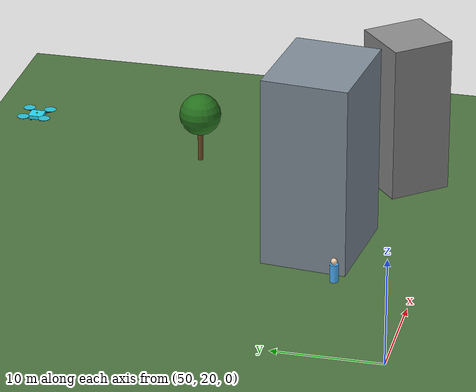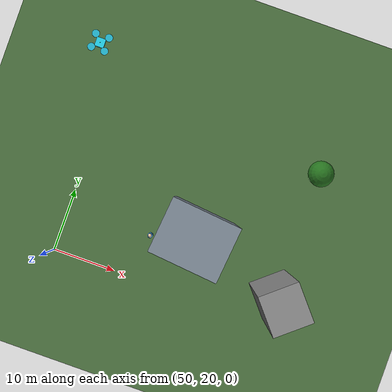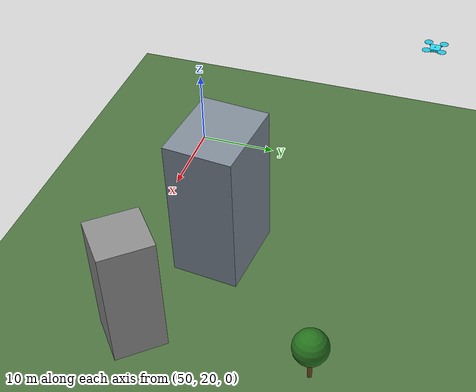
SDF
<sdf version="1.6">
 <world name="vla_6g_demo">
  <model name="ground_plane">
   <static>true</static>
   <link name="link">
    <collision name="collision">
     <geometry><plane><normal>0 0 1</normal><size>200 200</size></plane></geometry>
    </collision>
    <visual name="visual">
     <geometry><plane><normal>0 0 1</normal><size>200 200</size></plane></geometry>
     <material>
      <ambient>0.25 0.4 0.2 1</ambient>
      <diffuse>0.3 0.45 0.25 1</diffuse>
      <specular>0.05 0.05 0.05 1</specular>
     </material>
    </visual>
   </link>
   <pose>50 50 0 0 0 0</pose>
  </model>
  <model name="building_2">
   <static>true</static>
   <link name="link">
    <visual name="visual">
     <geometry><box><size>10 8 18</size></box></geometry>
     <material>
      <ambient>0.45 0.5 0.55 1</ambient>
      <diffuse>0.5 0.55 0.6 1</diffuse>
      <specular>0.3 0.3 0.3 1</specular>
     </material>
    </visual>
   </link>
   <pose>70 30 9 0 0 -0.1</pose>
  </model>
  <model name="building_5">
   <static>true</static>
   <link name="link">
    <visual name="visual">
     <geometry><box><size>6 6 15</size></box></geometry>
     <material><ambient>0.5 0.5 0.5 1</ambient><diffuse>0.55 0.55 0.55 1</diffuse></material>
    </visual>
   </link>
   <pose>85 25 7.5 0 0 0.7</pose>
  </model>
  <model name="user_0">
   <static>true</static>
   <link name="link">
    <visual name="body">
     <geometry><cylinder><radius>0.4</radius><length>1.7</length></cylinder></geometry>
     <material><ambient>0.2 0.6 0.9 1</ambient><diffuse>0.3 0.7 1.0 1</diffuse></material>
    </visual>
    <visual name="head">
     <pose>0 0 1.1 0 0 0</pose>
     <geometry><sphere><radius>0.3</radius></sphere></geometry>
     <material><ambient>0.9 0.75 0.6 1</ambient><diffuse>0.95 0.8 0.65 1</diffuse></material>
    </visual>
    <visual name="phone">
     <pose>0.35 0 0.3 0 0.3 0</pose>
     <geometry><box><size>0.08 0.04 0.15</size></box></geometry>
     <material>
      <ambient>0.1 0.1 0.1 1</ambient>
      <diffuse>0.15 0.15 0.15 1</diffuse>
      <emissive>0.0 0.3 0.5 1</emissive>
     </material>
    </visual>
   </link>
   <pose>63.6 27.3 0.85 0 0 0</pose>
  </model>
  <model name="tree_2">
   <static>true</static>
   <link name="link">
    <visual name="trunk">
     <geometry><cylinder><radius>0.25</radius><length>3.5</length></cylinder></geometry>
     <material><ambient>0.4 0.25 0.1 1</ambient><diffuse>0.45 0.3 0.15 1</diffuse></material>
    </visual>
    <visual name="canopy">
     <pose>0 0 3.0 0 0 0</pose>
     <geometry><sphere><radius>2.0</radius></sphere></geometry>
     <material><ambient>0.1 0.35 0.1 1</ambient><diffuse>0.15 0.45 0.12 1</diffuse></material>
    </visual>
   </link>
   <pose>85 45 1.75 0 0 0</pose>
  </model>
  <model name="x3_uav">
   <pose>50 50 20 0 0 0</pose>
   <link name="base_link">
    <inertial>
     <mass>1.5</mass>
     <inertia><ixx>0.19125</ixx><ixy>0</ixy><ixz>0</ixz><iyy>0.19125</iyy><iyz>0</iyz><izz>0.36</izz></inertia>
    </inertial>
    <visual name="body">
     <geometry><box><size>1.2 1.2 0.3</size></box></geometry>
     <material>
      <ambient>0.1 0.8 0.9 1</ambient>
      <diffuse>0.15 0.85 0.95 1</diffuse>
      <specular>0.5 0.5 0.5 1</specular>
     </material>
    </visual>
    <collision name="body_col"><geometry><box><size>1.2 1.2 0.3</size></box></geometry></collision>
    <visual name="arm_fr">
     <pose>0.5 -0.5 0 0 0 -0.785</pose>
     <geometry><box><size>1.2 0.12 0.1</size></box></geometry>
     <material><ambient>0.3 0.3 0.3 1</ambient><diffuse>0.35 0.35 0.35 1</diffuse></material>
    </visual>
    <visual name="arm_fl">
     <pose>0.5 0.5 0 0 0 0.785</pose>
     <geometry><box><size>1.2 0.12 0.1</size></box></geometry>
     <material><ambient>0.3 0.3 0.3 1</ambient><diffuse>0.35 0.35 0.35 1</diffuse></material>
    </visual>
    <visual name="arm_rr">
     <pose>-0.5 -0.5 0 0 0 0.785</pose>
     <geometry><box><size>1.2 0.12 0.1</size></box></geometry>
     <material><ambient>0.3 0.3 0.3 1</ambient><diffuse>0.35 0.35 0.35 1</diffuse></material>
    </visual>
    <visual name="arm_rl">
     <pose>-0.5 0.5 0 0 0 -0.785</pose>
     <geometry><box><size>1.2 0.12 0.1</size></box></geometry>
     <material><ambient>0.3 0.3 0.3 1</ambient><diffuse>0.35 0.35 0.35 1</diffuse></material>
    </visual>
    <visual name="motor_fr">
     <pose>0.9 -0.9 0.08 0 0 0</pose>
     <geometry><cylinder><radius>0.12</radius><length>0.15</length></cylinder></geometry>
     <material><ambient>0.2 0.2 0.2 1</ambient><diffuse>0.25 0.25 0.25 1</diffuse></material>
    </visual>
    <visual name="motor_fl">
     <pose>0.9 0.9 0.08 0 0 0</pose>
     <geometry><cylinder><radius>0.12</radius><length>0.15</length></cylinder></geometry>
     <material><ambient>0.2 0.2 0.2 1</ambient><diffuse>0.25 0.25 0.25 1</diffuse></material>
    </visual>
    <visual name="motor_rr">
     <pose>-0.9 -0.9 0.08 0 0 0</pose>
     <geometry><cylinder><radius>0.12</radius><length>0.15</length></cylinder></geometry>
     <material><ambient>0.2 0.2 0.2 1</ambient><diffuse>0.25 0.25 0.25 1</diffuse></material>
    </visual>
    <visual name="motor_rl">
     <pose>-0.9 0.9 0.08 0 0 0</pose>
     <geometry><cylinder><radius>0.12</radius><length>0.15</length></cylinder></geometry>
     <material><ambient>0.2 0.2 0.2 1</ambient><diffuse>0.25 0.25 0.25 1</diffuse></material>
    </visual>
    <visual name="leg_l">
     <pose>0 0.4 -0.3 0 0 0</pose>
     <geometry><box><size>1.0 0.06 0.06</size></box></geometry>
     <material><ambient>0.3 0.3 0.3 1</ambient><diffuse>0.35 0.35 0.35 1</diffuse></material>
    </visual>
    <visual name="leg_r">
     <pose>0 -0.4 -0.3 0 0 0</pose>
     <geometry><box><size>1.0 0.06 0.06</size></box></geometry>
     <material><ambient>0.3 0.3 0.3 1</ambient><diffuse>0.35 0.35 0.35 1</diffuse></material>
    </visual>
    <visual name="skid_l">
     <pose>0 0.4 -0.35 0 0 0</pose>
     <geometry><box><size>0.8 0.04 0.04</size></box></geometry>
     <material><ambient>0.15 0.15 0.15 1</ambient><diffuse>0.2 0.2 0.2 1</diffuse></material>
    </visual>
    <visual name="skid_r">
     <pose>0 -0.4 -0.35 0 0 0</pose>
     <geometry><box><size>0.8 0.04 0.04</size></box></geometry>
     <material><ambient>0.15 0.15 0.15 1</ambient><diffuse>0.2 0.2 0.2 1</diffuse></material>
    </visual>
    <visual name="led">
     <pose>0 0 0.18 0 0 0</pose>
     <geometry><sphere><radius>0.06</radius></sphere></geometry>
     <material>
      <ambient>0.2 1.0 0.3 1</ambient>
      <diffuse>0.2 1.0 0.3 1</diffuse>
      <emissive>0.0 1.0 0.0 1</emissive>
     </material>
    </visual>
   </link>
   <link name="rotor_0">
    <pose>0.9 -0.9 0.18 0 0 0</pose>
    <inertial>
     <mass>0.005</mass>
     <inertia>
      <ixx>9.75e-07</ixx>
      <ixy>0</ixy>
      <ixz>0</ixz>
      <iyy>0.000166704</iyy>
      <iyz>0</iyz>
      <izz>0.000167604</izz>
     </inertia>
    </inertial>
    <visual name="vis">
     <geometry><cylinder><radius>0.5</radius><length>0.02</length></cylinder></geometry>
     <material>
      <ambient>0.1 0.7 0.8 1</ambient>
      <diffuse>0.15 0.75 0.85 1</diffuse>
      <specular>0.3 0.3 0.3 1</specular>
     </material>
    </visual>
   </link>
   <joint name="rotor_0_joint" type="revolute">
    <parent>base_link</parent>
    <child>rotor_0</child>
    <axis><xyz>0 0 1</xyz><limit><lower>-1e16</lower><upper>1e16</upper></limit></axis>
   </joint>
   <link name="rotor_1">
    <pose>-0.9 0.9 0.18 0 0 0</pose>
    <inertial>
     <mass>0.005</mass>
     <inertia>
      <ixx>9.75e-07</ixx>
      <ixy>0</ixy>
      <ixz>0</ixz>
      <iyy>0.000166704</iyy>
      <iyz>0</iyz>
      <izz>0.000167604</izz>
     </inertia>
    </inertial>
    <visual name="vis">
     <geometry><cylinder><radius>0.5</radius><length>0.02</length></cylinder></geometry>
     <material><ambient>0.1 0.7 0.8 1</ambient><diffuse>0.15 0.75 0.85 1</diffuse></material>
    </visual>
   </link>
   <joint name="rotor_1_joint" type="revolute">
    <parent>base_link</parent>
    <child>rotor_1</child>
    <axis><xyz>0 0 1</xyz><limit><lower>-1e16</lower><upper>1e16</upper></limit></axis>
   </joint>
   <link name="rotor_2">
    <pose>0.9 0.9 0.18 0 0 0</pose>
    <inertial>
     <mass>0.005</mass>
     <inertia>
      <ixx>9.75e-07</ixx>
      <ixy>0</ixy>
      <ixz>0</ixz>
      <iyy>0.000166704</iyy>
      <iyz>0</iyz>
      <izz>0.000167604</izz>
     </inertia>
    </inertial>
    <visual name="vis">
     <geometry><cylinder><radius>0.5</radius><length>0.02</length></cylinder></geometry>
     <material><ambient>0.1 0.7 0.8 1</ambient><diffuse>0.15 0.75 0.85 1</diffuse></material>
    </visual>
   </link>
   <joint name="rotor_2_joint" type="revolute">
    <parent>base_link</parent>
    <child>rotor_2</child>
    <axis><xyz>0 0 1</xyz><limit><lower>-1e16</lower><upper>1e16</upper></limit></axis>
   </joint>
   <link name="rotor_3">
    <pose>-0.9 -0.9 0.18 0 0 0</pose>
    <inertial>
     <mass>0.005</mass>
     <inertia>
      <ixx>9.75e-07</ixx>
      <ixy>0</ixy>
      <ixz>0</ixz>
      <iyy>0.000166704</iyy>
      <iyz>0</iyz>
      <izz>0.000167604</izz>
     </inertia>
    </inertial>
    <visual name="vis">
     <geometry><cylinder><radius>0.5</radius><length>0.02</length></cylinder></geometry>
     <material><ambient>0.1 0.7 0.8 1</ambient><diffuse>0.15 0.75 0.85 1</diffuse></material>
    </visual>
   </link>
   <joint name="rotor_3_joint" type="revolute">
    <parent>base_link</parent>
    <child>rotor_3</child>
    <axis><xyz>0 0 1</xyz><limit><lower>-1e16</lower><upper>1e16</upper></limit></axis>
   </joint>
   <plugin filename="gz-sim-multicopter-motor-model-system" name="gz::sim::systems::MulticopterMotorModel">
    <robotNamespace>X3</robotNamespace>
    <jointName>rotor_0_joint</jointName>
    <linkName>rotor_0</linkName>
    <turningDirection>ccw</turningDirection>
    <timeConstantUp>0.0125</timeConstantUp>
    <timeConstantDown>0.025</timeConstantDown>
    <maxRotVelocity>800.0</maxRotVelocity>
    <motorConstant>8.54858e-06</motorConstant>
    <momentConstant>0.016</momentConstant>
    <commandSubTopic>gazebo/command/motor_speed</commandSubTopic>
    <actuator_number>0</actuator_number>
    <rotorDragCoefficient>8.06428e-05</rotorDragCoefficient>
    <rollingMomentCoefficient>1e-06</rollingMomentCoefficient>
    <motorSpeedPubTopic>motor_speed/0</motorSpeedPubTopic>
    <rotorVelocitySlowdownSim>10</rotorVelocitySlowdownSim>
    <motorType>velocity</motorType>
   </plugin>
   <plugin filename="gz-sim-multicopter-motor-model-system" name="gz::sim::systems::MulticopterMotorModel">
    <robotNamespace>X3</robotNamespace>
    <jointName>rotor_1_joint</jointName>
    <linkName>rotor_1</linkName>
    <turningDirection>ccw</turningDirection>
    <timeConstantUp>0.0125</timeConstantUp>
    <timeConstantDown>0.025</timeConstantDown>
    <maxRotVelocity>800.0</maxRotVelocity>
    <motorConstant>8.54858e-06</motorConstant>
    <momentConstant>0.016</momentConstant>
    <commandSubTopic>gazebo/command/motor_speed</commandSubTopic>
    <actuator_number>1</actuator_number>
    <rotorDragCoefficient>8.06428e-05</rotorDragCoefficient>
    <rollingMomentCoefficient>1e-06</rollingMomentCoefficient>
    <motorSpeedPubTopic>motor_speed/1</motorSpeedPubTopic>
    <rotorVelocitySlowdownSim>10</rotorVelocitySlowdownSim>
    <motorType>velocity</motorType>
   </plugin>
   <plugin filename="gz-sim-multicopter-motor-model-system" name="gz::sim::systems::MulticopterMotorModel">
    <robotNamespace>X3</robotNamespace>
    <jointName>rotor_2_joint</jointName>
    <linkName>rotor_2</linkName>
    <turningDirection>cw</turningDirection>
    <timeConstantUp>0.0125</timeConstantUp>
    <timeConstantDown>0.025</timeConstantDown>
    <maxRotVelocity>800.0</maxRotVelocity>
    <motorConstant>8.54858e-06</motorConstant>
    <momentConstant>0.016</momentConstant>
    <commandSubTopic>gazebo/command/motor_speed</commandSubTopic>
    <actuator_number>2</actuator_number>
    <rotorDragCoefficient>8.06428e-05</rotorDragCoefficient>
    <rollingMomentCoefficient>1e-06</rollingMomentCoefficient>
    <motorSpeedPubTopic>motor_speed/2</motorSpeedPubTopic>
    <rotorVelocitySlowdownSim>10</rotorVelocitySlowdownSim>
    <motorType>velocity</motorType>
   </plugin>
   <plugin filename="gz-sim-multicopter-motor-model-system" name="gz::sim::systems::MulticopterMotorModel">
    <robotNamespace>X3</robotNamespace>
    <jointName>rotor_3_joint</jointName>
    <linkName>rotor_3</linkName>
    <turningDirection>cw</turningDirection>
    <timeConstantUp>0.0125</timeConstantUp>
    <timeConstantDown>0.025</timeConstantDown>
    <maxRotVelocity>800.0</maxRotVelocity>
    <motorConstant>8.54858e-06</motorConstant>
    <momentConstant>0.016</momentConstant>
    <commandSubTopic>gazebo/command/motor_speed</commandSubTopic>
    <actuator_number>3</actuator_number>
    <rotorDragCoefficient>8.06428e-05</rotorDragCoefficient>
    <rollingMomentCoefficient>1e-06</rollingMomentCoefficient>
    <motorSpeedPubTopic>motor_speed/3</motorSpeedPubTopic>
    <rotorVelocitySlowdownSim>10</rotorVelocitySlowdownSim>
    <motorType>velocity</motorType>
   </plugin>
   <plugin filename="gz-sim-multicopter-control-system" name="gz::sim::systems::MulticopterVelocityControl">
    <robotNamespace>X3</robotNamespace>
    <commandSubTopic>gazebo/command/twist</commandSubTopic>
    <enableSubTopic>enable</enableSubTopic>
    <comLinkName>base_link</comLinkName>
    <velocityGain>2.7 2.7 2.7</velocityGain>
    <attitudeGain>2 3 0.15</attitudeGain>
    <angularRateGain>0.4 0.52 0.18</angularRateGain>
    <maximumLinearAcceleration>2 2 2</maximumLinearAcceleration>
    <rotorConfiguration>
     <rotor>
      <jointName>rotor_0_joint</jointName>
      <forceConstant>8.54858e-06</forceConstant>
      <momentConstant>0.016</momentConstant>
      <direction>1</direction>
     </rotor>
     <rotor>
      <jointName>rotor_1_joint</jointName>
      <forceConstant>8.54858e-06</forceConstant>
      <momentConstant>0.016</momentConstant>
      <direction>1</direction>
     </rotor>
     <rotor>
      <jointName>rotor_2_joint</jointName>
      <forceConstant>8.54858e-06</forceConstant>
      <momentConstant>0.016</momentConstant>
      <direction>-1</direction>
     </rotor>
     <rotor>
      <jointName>rotor_3_joint</jointName>
      <forceConstant>8.54858e-06</forceConstant>
      <momentConstant>0.016</momentConstant>
      <direction>-1</direction>
     </rotor>
    </rotorConfiguration>
   </plugin>
   <plugin filename="gz-sim-odometry-publisher-system" name="gz::sim::systems::OdometryPublisher">
    <dimensions>3</dimensions>
   </plugin>
  </model>
 </world>
</sdf>
